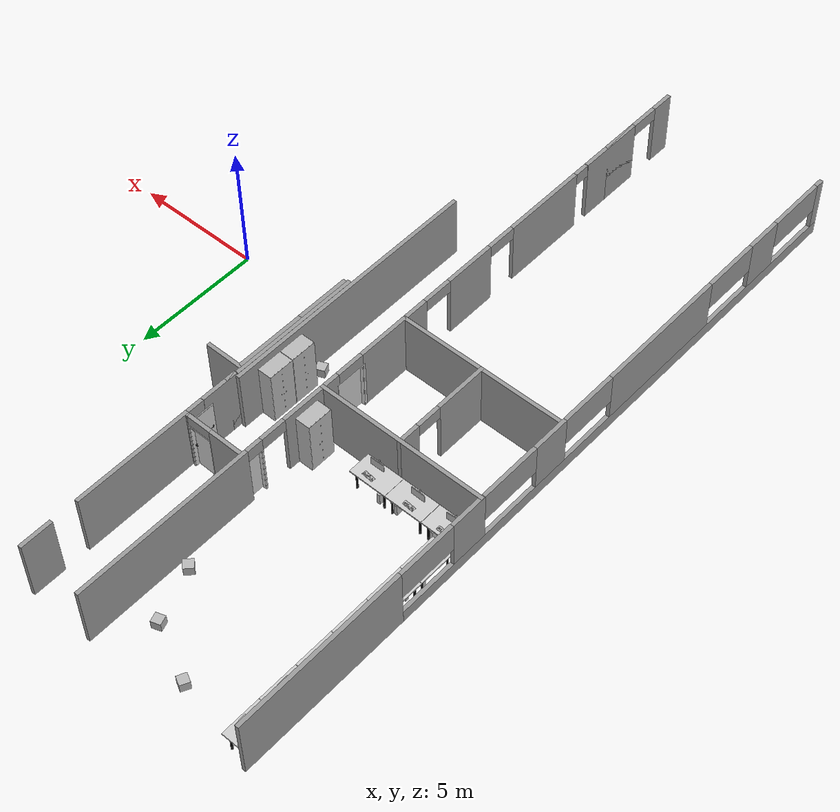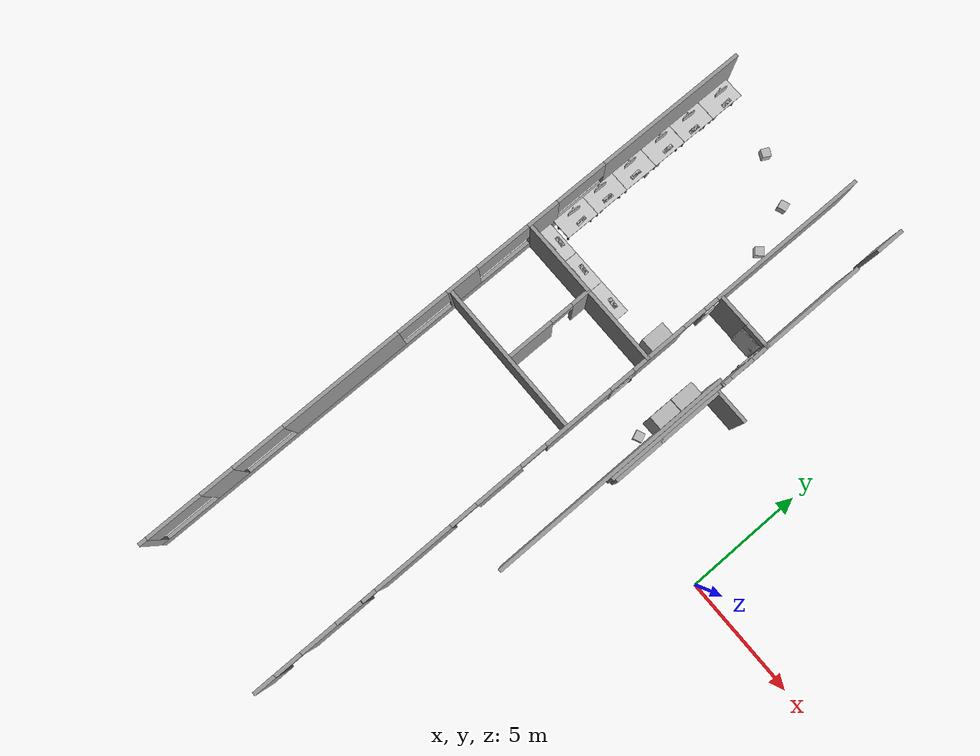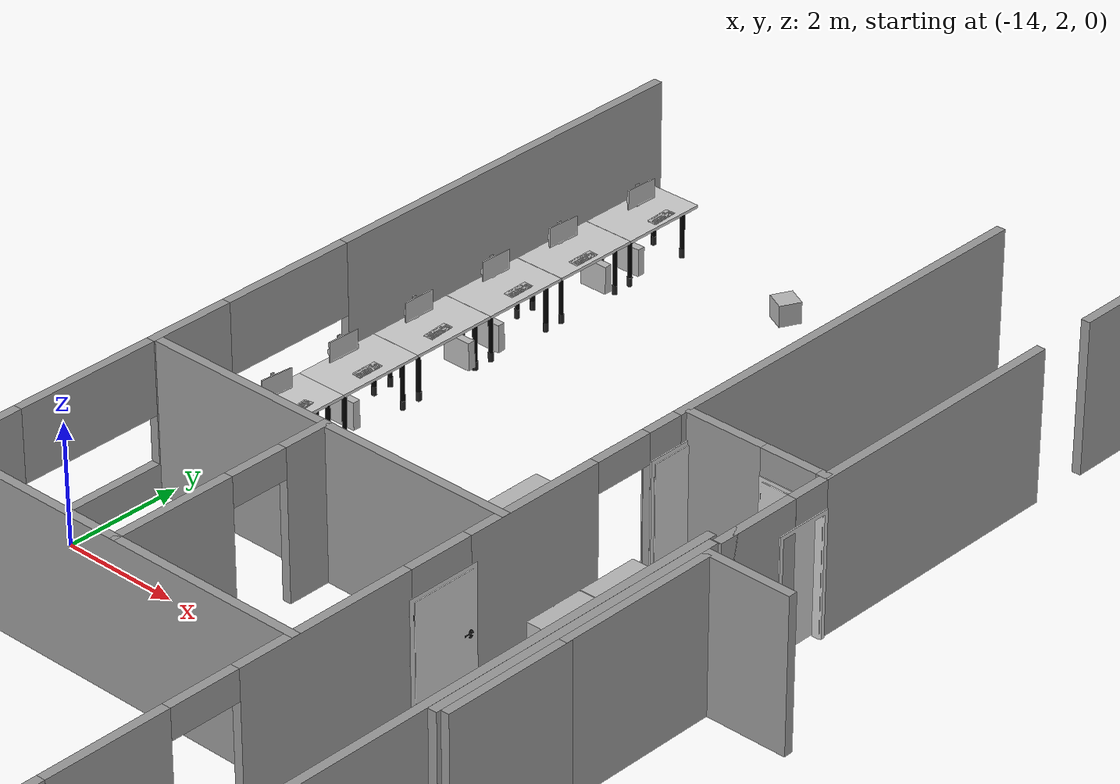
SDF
<sdf version="1.6">
 <world name="default">
  <model name="basement">
   <link name="Wall_1">
    <pose>-14.1254 0.001772 0 0 0 -1.5708</pose>
    <visual name="Wall_1_Visual_0">
     <pose>-10.8889 0 1.25 0 -0 0</pose>
     <geometry><box><size>6.72223 0.15 2.5</size></box></geometry>
     <material>
      <script><uri>file://media/materials/scripts/gazebo.material</uri><name>Gazebo/Grey</name></script>
      <ambient>1 1 1 1</ambient>
     </material>
    </visual>
    <collision name="Wall_1_Collision_0">
     <geometry><box><size>6.72223 0.15 2.5</size></box></geometry>
     <pose>-10.8889 0 1.25 0 -0 0</pose>
    </collision>
    <visual name="Wall_1_Visual_1">
     <pose>3.36112 0 0.25 0 -0 0</pose>
     <geometry><box><size>21.7778 0.15 0.5</size></box></geometry>
     <material>
      <script><uri>file://media/materials/scripts/gazebo.material</uri><name>Gazebo/Grey</name></script>
      <ambient>1 1 1 1</ambient>
     </material>
    </visual>
    <collision name="Wall_1_Collision_1">
     <geometry><box><size>21.7778 0.15 0.5</size></box></geometry>
     <pose>3.36112 0 0.25 0 -0 0</pose>
    </collision>
    <visual name="Wall_1_Visual_2">
     <pose>-4.48488 0 1.5 0 -0 0</pose>
     <geometry><box><size>1.45334 0.15 2</size></box></geometry>
     <material>
      <script><uri>file://media/materials/scripts/gazebo.material</uri><name>Gazebo/Grey</name></script>
      <ambient>1 1 1 1</ambient>
     </material>
    </visual>
    <collision name="Wall_1_Collision_2">
     <geometry><box><size>1.45334 0.15 2</size></box></geometry>
     <pose>-4.48488 0 1.5 0 -0 0</pose>
    </collision>
    <visual name="Wall_1_Visual_3">
     <pose>-0.57841 0 1.5 0 -0 0</pose>
     <geometry><box><size>1.45641 0.15 2</size></box></geometry>
     <material>
      <script><uri>file://media/materials/scripts/gazebo.material</uri><name>Gazebo/Grey</name></script>
      <ambient>1 1 1 1</ambient>
     </material>
    </visual>
    <collision name="Wall_1_Collision_3">
     <geometry><box><size>1.45641 0.15 2</size></box></geometry>
     <pose>-0.57841 0 1.5 0 -0 0</pose>
    </collision>
    <visual name="Wall_1_Visual_4">
     <pose>5.12077 0 1.5 0 -0 0</pose>
     <geometry><box><size>5.31789 0.15 2</size></box></geometry>
     <material>
      <script><uri>file://media/materials/scripts/gazebo.material</uri><name>Gazebo/Grey</name></script>
      <ambient>1 1 1 1</ambient>
     </material>
    </visual>
    <collision name="Wall_1_Collision_4">
     <geometry><box><size>5.31789 0.15 2</size></box></geometry>
     <pose>5.12077 0 1.5 0 -0 0</pose>
    </collision>
    <visual name="Wall_1_Visual_5">
     <pose>10.7967 0 1.5 0 -0 0</pose>
     <geometry><box><size>1.45641 0.15 2</size></box></geometry>
     <material>
      <script><uri>file://media/materials/scripts/gazebo.material</uri><name>Gazebo/Grey</name></script>
      <ambient>1 1 1 1</ambient>
     </material>
    </visual>
    <collision name="Wall_1_Collision_5">
     <geometry><box><size>1.45641 0.15 2</size></box></geometry>
     <pose>10.7967 0 1.5 0 -0 0</pose>
    </collision>
    <visual name="Wall_1_Visual_6">
     <pose>14.0784 0 1.5 0 -0 0</pose>
     <geometry><box><size>0.343295 0.15 2</size></box></geometry>
     <material>
      <script><uri>file://media/materials/scripts/gazebo.material</uri><name>Gazebo/Grey</name></script>
      <ambient>1 1 1 1</ambient>
     </material>
    </visual>
    <collision name="Wall_1_Collision_6">
     <geometry><box><size>0.343295 0.15 2</size></box></geometry>
     <pose>14.0784 0 1.5 0 -0 0</pose>
    </collision>
    <visual name="Wall_1_Visual_7">
     <pose>-6.36966 0 1.9 0 -0 0</pose>
     <geometry><box><size>2.31621 0.15 1.2</size></box></geometry>
     <material>
      <script><uri>file://media/materials/scripts/gazebo.material</uri><name>Gazebo/Grey</name></script>
      <ambient>1 1 1 1</ambient>
     </material>
    </visual>
    <collision name="Wall_1_Collision_7">
     <geometry><box><size>2.31621 0.15 1.2</size></box></geometry>
     <pose>-6.36966 0 1.9 0 -0 0</pose>
    </collision>
    <visual name="Wall_1_Visual_8">
     <pose>-2.53241 0 1.9 0 -0 0</pose>
     <geometry><box><size>2.4516 0.15 1.2</size></box></geometry>
     <material>
      <script><uri>file://media/materials/scripts/gazebo.material</uri><name>Gazebo/Grey</name></script>
      <ambient>1 1 1 1</ambient>
     </material>
    </visual>
    <collision name="Wall_1_Collision_8">
     <geometry><box><size>2.4516 0.15 1.2</size></box></geometry>
     <pose>-2.53241 0 1.9 0 -0 0</pose>
    </collision>
    <visual name="Wall_1_Visual_9">
     <pose>1.30581 0 1.9 0 -0 0</pose>
     <geometry><box><size>2.31203 0.15 1.2</size></box></geometry>
     <material>
      <script><uri>file://media/materials/scripts/gazebo.material</uri><name>Gazebo/Grey</name></script>
      <ambient>1 1 1 1</ambient>
     </material>
    </visual>
    <collision name="Wall_1_Collision_9">
     <geometry><box><size>2.31203 0.15 1.2</size></box></geometry>
     <pose>1.30581 0 1.9 0 -0 0</pose>
    </collision>
    <visual name="Wall_1_Visual_10">
     <pose>8.9241 0 1.9 0 -0 0</pose>
     <geometry><box><size>2.28877 0.15 1.2</size></box></geometry>
     <material>
      <script><uri>file://media/materials/scripts/gazebo.material</uri><name>Gazebo/Grey</name></script>
      <ambient>1 1 1 1</ambient>
     </material>
    </visual>
    <collision name="Wall_1_Collision_10">
     <geometry><box><size>2.28877 0.15 1.2</size></box></geometry>
     <pose>8.9241 0 1.9 0 -0 0</pose>
    </collision>
    <visual name="Wall_1_Visual_11">
     <pose>12.7158 0 1.9 0 -0 0</pose>
     <geometry><box><size>2.38181 0.15 1.2</size></box></geometry>
     <material>
      <script><uri>file://media/materials/scripts/gazebo.material</uri><name>Gazebo/Grey</name></script>
      <ambient>1 1 1 1</ambient>
     </material>
    </visual>
    <collision name="Wall_1_Collision_11">
     <geometry><box><size>2.38181 0.15 1.2</size></box></geometry>
     <pose>12.7158 0 1.9 0 -0 0</pose>
    </collision>
   </link>
   <link name="Wall_146">
    <collision name="Wall_146_Collision">
     <geometry><box><size>5.25 0.15 2.5</size></box></geometry>
     <pose>0 0 1.25 0 -0 0</pose>
    </collision>
    <visual name="Wall_146_Visual">
     <pose>0 0 1.25 0 -0 0</pose>
     <geometry><box><size>5.25 0.15 2.5</size></box></geometry>
     <material>
      <script><uri>file://media/materials/scripts/gazebo.material</uri><name>Gazebo/Grey</name></script>
      <ambient>1 1 1 1</ambient>
     </material>
    </visual>
    <pose>-5.04892 2.61682 0 0 -0 1.5708</pose>
   </link>
   <link name="Wall_17">
    <collision name="Wall_17_Collision">
     <geometry><box><size>6.75 0.15 2.5</size></box></geometry>
     <pose>0 0 1.25 0 -0 0</pose>
    </collision>
    <visual name="Wall_17_Visual">
     <pose>0 0 1.25 0 -0 0</pose>
     <geometry><box><size>6.75 0.15 2.5</size></box></geometry>
     <material>
      <script><uri>file://media/materials/scripts/gazebo.material</uri><name>Gazebo/Grey</name></script>
      <ambient>1 1 1 1</ambient>
     </material>
    </visual>
    <pose>-10.8156 0.004484 0 0 -0 0</pose>
   </link>
   <link name="Wall_19">
    <collision name="Wall_19_Collision">
     <geometry><box><size>6.75 0.15 2.5</size></box></geometry>
     <pose>0 0 1.25 0 -0 0</pose>
    </collision>
    <visual name="Wall_19_Visual">
     <pose>0 0 1.25 0 -0 0</pose>
     <geometry><box><size>6.75 0.15 2.5</size></box></geometry>
     <material>
      <script><uri>file://media/materials/scripts/gazebo.material</uri><name>Gazebo/Grey</name></script>
      <ambient>1 1 1 1</ambient>
     </material>
    </visual>
    <pose>-10.8156 3.85656 0 0 -0 0</pose>
   </link>
   <link name="Wall_21">
    <pose>-10.8088 1.93156 0 0 0 -1.5708</pose>
    <visual name="Wall_21_Visual_0">
     <pose>-1.56265 0 1.25 0 -0 0</pose>
     <geometry><box><size>0.874704 0.15 2.5</size></box></geometry>
     <material>
      <script><uri>file://media/materials/scripts/gazebo.material</uri><name>Gazebo/Grey</name></script>
      <ambient>1 1 1 1</ambient>
     </material>
    </visual>
    <collision name="Wall_21_Collision_0">
     <geometry><box><size>0.874704 0.15 2.5</size></box></geometry>
     <pose>-1.56265 0 1.25 0 -0 0</pose>
    </collision>
    <visual name="Wall_21_Visual_1">
     <pose>0.933876 0 1.25 0 -0 0</pose>
     <geometry><box><size>2.13225 0.15 2.5</size></box></geometry>
     <material>
      <script><uri>file://media/materials/scripts/gazebo.material</uri><name>Gazebo/Grey</name></script>
      <ambient>1 1 1 1</ambient>
     </material>
    </visual>
    <collision name="Wall_21_Collision_1">
     <geometry><box><size>2.13225 0.15 2.5</size></box></geometry>
     <pose>0.933876 0 1.25 0 -0 0</pose>
    </collision>
    <visual name="Wall_21_Visual_2">
     <pose>-0.628773 0 2.25 0 -0 0</pose>
     <geometry><box><size>0.993048 0.15 0.5</size></box></geometry>
     <material>
      <script><uri>file://media/materials/scripts/gazebo.material</uri><name>Gazebo/Grey</name></script>
      <ambient>1 1 1 1</ambient>
     </material>
    </visual>
    <collision name="Wall_21_Collision_2">
     <geometry><box><size>0.993048 0.15 0.5</size></box></geometry>
     <pose>-0.628773 0 2.25 0 -0 0</pose>
    </collision>
   </link>
   <link name="Wall_23">
    <pose>-5.00676 8.62969 0 0 0 -1.5708</pose>
    <visual name="Wall_23_Visual_0">
     <pose>-1.06412 0 1.25 0 -0 0</pose>
     <geometry><box><size>4.62176 0.15 2.5</size></box></geometry>
     <material>
      <script><uri>file://media/materials/scripts/gazebo.material</uri><name>Gazebo/Grey</name></script>
      <ambient>1 1 1 1</ambient>
     </material>
    </visual>
    <collision name="Wall_23_Collision_0">
     <geometry><box><size>4.62176 0.15 2.5</size></box></geometry>
     <pose>-1.06412 0 1.25 0 -0 0</pose>
    </collision>
    <visual name="Wall_23_Visual_1">
     <pose>2.63296 0 1.25 0 -0 0</pose>
     <geometry><box><size>1.48408 0.15 2.5</size></box></geometry>
     <material>
      <script><uri>file://media/materials/scripts/gazebo.material</uri><name>Gazebo/Grey</name></script>
      <ambient>1 1 1 1</ambient>
     </material>
    </visual>
    <collision name="Wall_23_Collision_1">
     <geometry><box><size>1.48408 0.15 2.5</size></box></geometry>
     <pose>2.63296 0 1.25 0 -0 0</pose>
    </collision>
    <visual name="Wall_23_Visual_2">
     <pose>3.15649 0 1.25 0 -0 0</pose>
     <geometry><box><size>0.437027 0.15 2.5</size></box></geometry>
     <material>
      <script><uri>file://media/materials/scripts/gazebo.material</uri><name>Gazebo/Grey</name></script>
      <ambient>1 1 1 1</ambient>
     </material>
    </visual>
    <collision name="Wall_23_Collision_2">
     <geometry><box><size>0.437027 0.15 2.5</size></box></geometry>
     <pose>3.15649 0 1.25 0 -0 0</pose>
    </collision>
    <visual name="Wall_23_Visual_3">
     <pose>1.56762 0 2.25 0 -0 0</pose>
     <geometry><box><size>0.641714 0.15 0.5</size></box></geometry>
     <material>
      <script><uri>file://media/materials/scripts/gazebo.material</uri><name>Gazebo/Grey</name></script>
      <ambient>1 1 1 1</ambient>
     </material>
    </visual>
    <collision name="Wall_23_Collision_3">
     <geometry><box><size>0.641714 0.15 0.5</size></box></geometry>
     <pose>1.56762 0 2.25 0 -0 0</pose>
    </collision>
   </link>
   <link name="Wall_25">
    <pose>-6.22027 7.45768 0 0 -0 0</pose>
    <visual name="Wall_25_Visual_0">
     <pose>-0.572125 0 1.25 0 -0 0</pose>
     <geometry><box><size>1.35575 0.15 2.5</size></box></geometry>
     <material>
      <script><uri>file://media/materials/scripts/gazebo.material</uri><name>Gazebo/Grey</name></script>
      <ambient>1 1 1 1</ambient>
     </material>
    </visual>
    <collision name="Wall_25_Collision_0">
     <geometry><box><size>1.35575 0.15 2.5</size></box></geometry>
     <pose>-0.572125 0 1.25 0 -0 0</pose>
    </collision>
    <visual name="Wall_25_Visual_1">
     <pose>1.16237 0 1.25 0 -0 0</pose>
     <geometry><box><size>0.17525 0.15 2.5</size></box></geometry>
     <material>
      <script><uri>file://media/materials/scripts/gazebo.material</uri><name>Gazebo/Grey</name></script>
      <ambient>1 1 1 1</ambient>
     </material>
    </visual>
    <collision name="Wall_25_Collision_1">
     <geometry><box><size>0.17525 0.15 2.5</size></box></geometry>
     <pose>1.16237 0 1.25 0 -0 0</pose>
    </collision>
    <visual name="Wall_25_Visual_2">
     <pose>0.59025 0 2.25 0 -0 0</pose>
     <geometry><box><size>0.969 0.15 0.5</size></box></geometry>
     <material>
      <script><uri>file://media/materials/scripts/gazebo.material</uri><name>Gazebo/Grey</name></script>
      <ambient>1 1 1 1</ambient>
     </material>
    </visual>
    <collision name="Wall_25_Collision_2">
     <geometry><box><size>0.969 0.15 0.5</size></box></geometry>
     <pose>0.59025 0 2.25 0 -0 0</pose>
    </collision>
   </link>
   <link name="Wall_27">
    <collision name="Wall_27_Collision">
     <geometry><box><size>1.25 0.15 2.5</size></box></geometry>
     <pose>0 0 1.25 0 -0 0</pose>
    </collision>
    <visual name="Wall_27_Visual">
     <pose>0 0 1.25 0 -0 0</pose>
     <geometry><box><size>1.25 0.15 2.5</size></box></geometry>
     <material>
      <script><uri>file://media/materials/scripts/gazebo.material</uri><name>Gazebo/Grey</name></script>
      <ambient>1 1 1 1</ambient>
     </material>
    </visual>
    <pose>-4.99983 13.6109 0 0 -0 1.5708</pose>
   </link>
   <link name="Wall_29">
    <collision name="Wall_29_Collision">
     <geometry><box><size>10.5 0.15 2.5</size></box></geometry>
     <pose>0 0 1.25 0 -0 0</pose>
    </collision>
    <visual name="Wall_29_Visual">
     <pose>0 0 1.25 0 -0 0</pose>
     <geometry><box><size>10.5 0.15 2.5</size></box></geometry>
     <material>
      <script><uri>file://media/materials/scripts/gazebo.material</uri><name>Gazebo/Grey</name></script>
      <ambient>1 1 1 1</ambient>
     </material>
    </visual>
    <pose>-5.20099 0.119525 0 0 0 -1.5708</pose>
   </link>
   <link name="Wall_47">
    <collision name="Wall_47_Collision">
     <geometry><box><size>2.75 0.15 2.5</size></box></geometry>
     <pose>0 0 1.25 0 -0 0</pose>
    </collision>
    <visual name="Wall_47_Visual">
     <pose>0 0 1.25 0 -0 0</pose>
     <geometry><box><size>2.75 0.15 2.5</size></box></geometry>
     <material>
      <script><uri>file://media/materials/scripts/gazebo.material</uri><name>Gazebo/Grey</name></script>
      <ambient>1 1 1 1</ambient>
     </material>
    </visual>
    <pose>-4.91322 3.5855 0 0 0 -1.5708</pose>
   </link>
   <link name="Wall_57">
    <collision name="Wall_57_Collision">
     <geometry><box><size>1.5 0.15 2.5</size></box></geometry>
     <pose>0 0 1.25 0 -0 0</pose>
    </collision>
    <visual name="Wall_57_Visual">
     <pose>0 0 1.25 0 -0 0</pose>
     <geometry><box><size>1.5 0.15 2.5</size></box></geometry>
     <material>
      <script><uri>file://media/materials/scripts/gazebo.material</uri><name>Gazebo/Grey</name></script>
      <ambient>1 1 1 1</ambient>
     </material>
    </visual>
    <pose>-4.23706 4.99373 0 0 -0 0</pose>
   </link>
   <link name="Wall_61">
    <collision name="Wall_61_Collision">
     <geometry><box><size>2.25 0.15 2.5</size></box></geometry>
     <pose>0 0 1.25 0 -0 0</pose>
    </collision>
    <visual name="Wall_61_Visual">
     <pose>0 0 1.25 0 -0 0</pose>
     <geometry><box><size>2.25 0.15 2.5</size></box></geometry>
     <material>
      <script><uri>file://media/materials/scripts/gazebo.material</uri><name>Gazebo/Grey</name></script>
      <ambient>1 1 1 1</ambient>
     </material>
    </visual>
    <pose>-4.90974 1.19358 0 0 -0 1.5708</pose>
   </link>
   <link name="Wall_9">
    <pose>-7.5098 -0.001772 0 0 0 -1.5708</pose>
    <visual name="Wall_9_Visual_0">
     <pose>-10.7651 0 1.25 0 -0 0</pose>
     <geometry><box><size>6.96988 0.15 2.5</size></box></geometry>
     <material>
      <script><uri>file://media/materials/scripts/gazebo.material</uri><name>Gazebo/Grey</name></script>
      <ambient>1 1 1 1</ambient>
     </material>
    </visual>
    <collision name="Wall_9_Collision_0">
     <geometry><box><size>6.96988 0.15 2.5</size></box></geometry>
     <pose>-10.7651 0 1.25 0 -0 0</pose>
    </collision>
    <visual name="Wall_9_Visual_1">
     <pose>-6.6572 0 1.25 0 -0 0</pose>
     <geometry><box><size>0.001376 0.15 2.5</size></box></geometry>
     <material>
      <script><uri>file://media/materials/scripts/gazebo.material</uri><name>Gazebo/Grey</name></script>
      <ambient>1 1 1 1</ambient>
     </material>
    </visual>
    <collision name="Wall_9_Collision_1">
     <geometry><box><size>0.001376 0.15 2.5</size></box></geometry>
     <pose>-6.6572 0 1.25 0 -0 0</pose>
    </collision>
    <visual name="Wall_9_Visual_2">
     <pose>-4.41142 0 1.25 0 -0 0</pose>
     <geometry><box><size>2.44394 0.15 2.5</size></box></geometry>
     <material>
      <script><uri>file://media/materials/scripts/gazebo.material</uri><name>Gazebo/Grey</name></script>
      <ambient>1 1 1 1</ambient>
     </material>
    </visual>
    <collision name="Wall_9_Collision_2">
     <geometry><box><size>2.44394 0.15 2.5</size></box></geometry>
     <pose>-4.41142 0 1.25 0 -0 0</pose>
    </collision>
    <visual name="Wall_9_Visual_3">
     <pose>-0.541192 0 1.25 0 -0 0</pose>
     <geometry><box><size>3.0778 0.15 2.5</size></box></geometry>
     <material>
      <script><uri>file://media/materials/scripts/gazebo.material</uri><name>Gazebo/Grey</name></script>
      <ambient>1 1 1 1</ambient>
     </material>
    </visual>
    <collision name="Wall_9_Collision_3">
     <geometry><box><size>3.0778 0.15 2.5</size></box></geometry>
     <pose>-0.541192 0 1.25 0 -0 0</pose>
    </collision>
    <visual name="Wall_9_Visual_4">
     <pose>3.21561 0 1.25 0 -0 0</pose>
     <geometry><box><size>2.07753 0.15 2.5</size></box></geometry>
     <material>
      <script><uri>file://media/materials/scripts/gazebo.material</uri><name>Gazebo/Grey</name></script>
      <ambient>1 1 1 1</ambient>
     </material>
    </visual>
    <collision name="Wall_9_Collision_4">
     <geometry><box><size>2.07753 0.15 2.5</size></box></geometry>
     <pose>3.21561 0 1.25 0 -0 0</pose>
    </collision>
    <visual name="Wall_9_Visual_5">
     <pose>7.14533 0 1.25 0 -0 0</pose>
     <geometry><box><size>3.42362 0.15 2.5</size></box></geometry>
     <material>
      <script><uri>file://media/materials/scripts/gazebo.material</uri><name>Gazebo/Grey</name></script>
      <ambient>1 1 1 1</ambient>
     </material>
    </visual>
    <collision name="Wall_9_Collision_5">
     <geometry><box><size>3.42362 0.15 2.5</size></box></geometry>
     <pose>7.14533 0 1.25 0 -0 0</pose>
    </collision>
    <visual name="Wall_9_Visual_6">
     <pose>10.8295 0 1.25 0 -0 0</pose>
     <geometry><box><size>2.69123 0.15 2.5</size></box></geometry>
     <material>
      <script><uri>file://media/materials/scripts/gazebo.material</uri><name>Gazebo/Grey</name></script>
      <ambient>1 1 1 1</ambient>
     </material>
    </visual>
    <collision name="Wall_9_Collision_6">
     <geometry><box><size>2.69123 0.15 2.5</size></box></geometry>
     <pose>10.8295 0 1.25 0 -0 0</pose>
    </collision>
    <visual name="Wall_9_Visual_7">
     <pose>11.398 0 1.25 0 -0 0</pose>
     <geometry><box><size>1.55414 0.15 2.5</size></box></geometry>
     <material>
      <script><uri>file://media/materials/scripts/gazebo.material</uri><name>Gazebo/Grey</name></script>
      <ambient>1 1 1 1</ambient>
     </material>
    </visual>
    <collision name="Wall_9_Collision_7">
     <geometry><box><size>1.55414 0.15 2.5</size></box></geometry>
     <pose>11.398 0 1.25 0 -0 0</pose>
    </collision>
    <visual name="Wall_9_Visual_8">
     <pose>13.7905 0 1.25 0 -0 0</pose>
     <geometry><box><size>0.919043 0.15 2.5</size></box></geometry>
     <material>
      <script><uri>file://media/materials/scripts/gazebo.material</uri><name>Gazebo/Grey</name></script>
      <ambient>1 1 1 1</ambient>
     </material>
    </visual>
    <collision name="Wall_9_Collision_8">
     <geometry><box><size>0.919043 0.15 2.5</size></box></geometry>
     <pose>13.7905 0 1.25 0 -0 0</pose>
    </collision>
    <visual name="Wall_9_Visual_9">
     <pose>-6.969 0 2.25 0 -0 0</pose>
     <geometry><box><size>0.622229 0.15 0.5</size></box></geometry>
     <material>
      <script><uri>file://media/materials/scripts/gazebo.material</uri><name>Gazebo/Grey</name></script>
      <ambient>1 1 1 1</ambient>
     </material>
    </visual>
    <collision name="Wall_9_Collision_9">
     <geometry><box><size>0.622229 0.15 0.5</size></box></geometry>
     <pose>-6.969 0 2.25 0 -0 0</pose>
    </collision>
    <visual name="Wall_9_Visual_10">
     <pose>-6.14495 0 2.25 0 -0 0</pose>
     <geometry><box><size>1.02313 0.15 0.5</size></box></geometry>
     <material>
      <script><uri>file://media/materials/scripts/gazebo.material</uri><name>Gazebo/Grey</name></script>
      <ambient>1 1 1 1</ambient>
     </material>
    </visual>
    <collision name="Wall_9_Collision_10">
     <geometry><box><size>1.02313 0.15 0.5</size></box></geometry>
     <pose>-6.14495 0 2.25 0 -0 0</pose>
    </collision>
    <visual name="Wall_9_Visual_11">
     <pose>-2.63477 0 2.25 0 -0 0</pose>
     <geometry><box><size>1.10936 0.15 0.5</size></box></geometry>
     <material>
      <script><uri>file://media/materials/scripts/gazebo.material</uri><name>Gazebo/Grey</name></script>
      <ambient>1 1 1 1</ambient>
     </material>
    </visual>
    <collision name="Wall_9_Collision_11">
     <geometry><box><size>1.10936 0.15 0.5</size></box></geometry>
     <pose>-2.63477 0 2.25 0 -0 0</pose>
    </collision>
    <visual name="Wall_9_Visual_12">
     <pose>1.58728 0 2.25 0 -0 0</pose>
     <geometry><box><size>1.17914 0.15 0.5</size></box></geometry>
     <material>
      <script><uri>file://media/materials/scripts/gazebo.material</uri><name>Gazebo/Grey</name></script>
      <ambient>1 1 1 1</ambient>
     </material>
    </visual>
    <collision name="Wall_9_Collision_12">
     <geometry><box><size>1.17914 0.15 0.5</size></box></geometry>
     <pose>1.58728 0 2.25 0 -0 0</pose>
    </collision>
    <visual name="Wall_9_Visual_13">
     <pose>4.84395 0 2.25 0 -0 0</pose>
     <geometry><box><size>1.17914 0.15 0.5</size></box></geometry>
     <material>
      <script><uri>file://media/materials/scripts/gazebo.material</uri><name>Gazebo/Grey</name></script>
      <ambient>1 1 1 1</ambient>
     </material>
    </visual>
    <collision name="Wall_9_Collision_13">
     <geometry><box><size>1.17914 0.15 0.5</size></box></geometry>
     <pose>4.84395 0 2.25 0 -0 0</pose>
    </collision>
    <visual name="Wall_9_Visual_14">
     <pose>9.1611 0 2.25 0 -0 0</pose>
     <geometry><box><size>0.607918 0.15 0.5</size></box></geometry>
     <material>
      <script><uri>file://media/materials/scripts/gazebo.material</uri><name>Gazebo/Grey</name></script>
      <ambient>1 1 1 1</ambient>
     </material>
    </visual>
    <collision name="Wall_9_Collision_14">
     <geometry><box><size>0.607918 0.15 0.5</size></box></geometry>
     <pose>9.1611 0 2.25 0 -0 0</pose>
    </collision>
    <visual name="Wall_9_Visual_15">
     <pose>12.753 0 2.25 0 -0 0</pose>
     <geometry><box><size>1.15588 0.15 0.5</size></box></geometry>
     <material>
      <script><uri>file://media/materials/scripts/gazebo.material</uri><name>Gazebo/Grey</name></script>
      <ambient>1 1 1 1</ambient>
     </material>
    </visual>
    <collision name="Wall_9_Collision_15">
     <geometry><box><size>1.15588 0.15 0.5</size></box></geometry>
     <pose>12.753 0 2.25 0 -0 0</pose>
    </collision>
    <visual name="Wall_9_Visual_16">
     <pose>12.753 0 2.25 0 -0 0</pose>
     <geometry><box><size>1.15588 0.15 0.5</size></box></geometry>
     <material>
      <script><uri>file://media/materials/scripts/gazebo.material</uri><name>Gazebo/Grey</name></script>
      <ambient>1 1 1 1</ambient>
     </material>
    </visual>
    <collision name="Wall_9_Collision_16">
     <geometry><box><size>1.15588 0.15 0.5</size></box></geometry>
     <pose>12.753 0 2.25 0 -0 0</pose>
    </collision>
   </link>
   <static>1</static>
  </model>
  <model name="wardrobe">
   <link name="link">
    <visual name="visual">
     <geometry><mesh><uri>model://cabinet/meshes/cabinet.dae</uri><scale>1 1 1</scale></mesh></geometry>
    </visual>
    <collision name="collision">
     <geometry><mesh><uri>model://cabinet/meshes/cabinet.dae</uri><scale>1 1 1</scale></mesh></geometry>
    </collision>
   </link>
   <static>1</static>
   <pose>-7.88879 4.71222 0 0 0 -1.5707</pose>
  </model>
  <model name="wardrobe_0">
   <link name="link">
    <visual name="visual">
     <geometry><mesh><uri>model://cabinet/meshes/cabinet.dae</uri><scale>1 1 1</scale></mesh></geometry>
    </visual>
    <collision name="collision">
     <geometry><mesh><uri>model://cabinet/meshes/cabinet.dae</uri><scale>1 1 1</scale></mesh></geometry>
    </collision>
   </link>
   <static>1</static>
   <pose>-5.55 4.05207 0 0 0 -1.5707</pose>
  </model>
  <model name="wardrobe_1">
   <link name="link">
    <visual name="visual">
     <geometry><mesh><uri>model://cabinet/meshes/cabinet.dae</uri><scale>1 1 1</scale></mesh></geometry>
    </visual>
    <collision name="collision">
     <geometry><mesh><uri>model://cabinet/meshes/cabinet.dae</uri><scale>1 1 1</scale></mesh></geometry>
    </collision>
   </link>
   <static>1</static>
   <pose>-5.55012 3.03744 0 0 0 -1.5707</pose>
  </model>
  <model name="office_table">
   <link name="link">
    <visual name="visual">
     <geometry><mesh><uri>model://office_table/meshes/office_table.dae</uri><scale>1 1 1</scale></mesh></geometry>
    </visual>
    <collision name="collision">
     <geometry><mesh><uri>model://office_table/meshes/office_table.dae</uri><scale>1 1 1</scale></mesh></geometry>
    </collision>
   </link>
   <static>1</static>
   <pose>-13.5998 10.3558 0 0 -0 1.5707</pose>
  </model>
  <model name="office_table_0">
   <link name="link">
    <visual name="visual">
     <geometry><mesh><uri>model://office_table/meshes/office_table.dae</uri><scale>1 1 1</scale></mesh></geometry>
    </visual>
    <collision name="collision">
     <geometry><mesh><uri>model://office_table/meshes/office_table.dae</uri><scale>1 1 1</scale></mesh></geometry>
    </collision>
   </link>
   <static>1</static>
   <pose>-13.6 5.80688 0 0 -0 1.5707</pose>
  </model>
  <model name="office_table_1">
   <link name="link">
    <visual name="visual">
     <geometry><mesh><uri>model://office_table/meshes/office_table.dae</uri><scale>1 1 1</scale></mesh></geometry>
    </visual>
    <collision name="collision">
     <geometry><mesh><uri>model://office_table/meshes/office_table.dae</uri><scale>1 1 1</scale></mesh></geometry>
    </collision>
   </link>
   <static>1</static>
   <pose>-13.6 7.32319 0 0 -0 1.5707</pose>
  </model>
  <model name="office_table_2">
   <link name="link">
    <visual name="visual">
     <geometry><mesh><uri>model://office_table/meshes/office_table.dae</uri><scale>1 1 1</scale></mesh></geometry>
    </visual>
    <collision name="collision">
     <geometry><mesh><uri>model://office_table/meshes/office_table.dae</uri><scale>1 1 1</scale></mesh></geometry>
    </collision>
   </link>
   <static>1</static>
   <pose>-10.1891 4.4 0 0 -0 0</pose>
  </model>
  <model name="office_table_3">
   <link name="link">
    <visual name="visual">
     <geometry><mesh><uri>model://office_table/meshes/office_table.dae</uri><scale>1 1 1</scale></mesh></geometry>
    </visual>
    <collision name="collision">
     <geometry><mesh><uri>model://office_table/meshes/office_table.dae</uri><scale>1 1 1</scale></mesh></geometry>
    </collision>
   </link>
   <static>1</static>
   <pose>-13.5997 11.8755 0 0 -0 1.5707</pose>
  </model>
  <model name="office_table_4">
   <link name="link">
    <visual name="visual">
     <geometry><mesh><uri>model://office_table/meshes/office_table.dae</uri><scale>1 1 1</scale></mesh></geometry>
    </visual>
    <collision name="collision">
     <geometry><mesh><uri>model://office_table/meshes/office_table.dae</uri><scale>1 1 1</scale></mesh></geometry>
    </collision>
   </link>
   <static>1</static>
   <pose>-13.5998 8.83935 0 0 -0 1.5707</pose>
  </model>
  <model name="office_table_5">
   <link name="link">
    <visual name="visual">
     <geometry><mesh><uri>model://office_table/meshes/office_table.dae</uri><scale>1 1 1</scale></mesh></geometry>
    </visual>
    <collision name="collision">
     <geometry><mesh><uri>model://office_table/meshes/office_table.dae</uri><scale>1 1 1</scale></mesh></geometry>
    </collision>
   </link>
   <static>1</static>
   <pose>-11.7071 4.4 0 0 -0 0</pose>
  </model>
  <model name="office_table_6">
   <link name="link">
    <visual name="visual">
     <geometry><mesh><uri>model://office_table/meshes/office_table.dae</uri><scale>1 1 1</scale></mesh></geometry>
    </visual>
    <collision name="collision">
     <geometry><mesh><uri>model://office_table/meshes/office_table.dae</uri><scale>1 1 1</scale></mesh></geometry>
    </collision>
   </link>
   <static>1</static>
   <pose>-13.2354 4.4 0 0 -0 0</pose>
  </model>
  <model name="office_table_7">
   <link name="link">
    <visual name="visual">
     <geometry><mesh><uri>model://office_table/meshes/office_table.dae</uri><scale>1 1 1</scale></mesh></geometry>
    </visual>
    <collision name="collision">
     <geometry><mesh><uri>model://office_table/meshes/office_table.dae</uri><scale>1 1 1</scale></mesh></geometry>
    </collision>
   </link>
   <static>1</static>
   <pose>-13.5998 13.393 0 0 -0 1.5707</pose>
  </model>
  <model name="pc">
   <link name="link">
    <visual name="visual">
     <geometry><mesh><uri>model://pc/meshes/pc.dae</uri><scale>1 1 1</scale></mesh></geometry>
    </visual>
    <collision name="collision">
     <geometry><mesh><uri>model://pc/meshes/pc.dae</uri><scale>1 1 1</scale></mesh></geometry>
    </collision>
   </link>
   <static>1</static>
   <pose>-11.3419 4.48606 0 0 -0 3.141</pose>
  </model>
  <model name="pc_0">
   <link name="link">
    <visual name="visual">
     <geometry><mesh><uri>model://pc/meshes/pc.dae</uri><scale>1 1 1</scale></mesh></geometry>
    </visual>
    <collision name="collision">
     <geometry><mesh><uri>model://pc/meshes/pc.dae</uri><scale>1 1 1</scale></mesh></geometry>
    </collision>
   </link>
   <static>1</static>
   <pose>-12.8626 4.49995 0 0 -0 3.141</pose>
  </model>
  <model name="pc_1">
   <link name="link">
    <visual name="visual">
     <geometry><mesh><uri>model://pc/meshes/pc.dae</uri><scale>1 1 1</scale></mesh></geometry>
    </visual>
    <collision name="collision">
     <geometry><mesh><uri>model://pc/meshes/pc.dae</uri><scale>1 1 1</scale></mesh></geometry>
    </collision>
   </link>
   <static>1</static>
   <pose>-10.6413 4.52563 0 0 -0 3.141</pose>
  </model>
  <model name="pc_2">
   <link name="link">
    <visual name="visual">
     <geometry><mesh><uri>model://pc/meshes/pc.dae</uri><scale>1 1 1</scale></mesh></geometry>
    </visual>
    <collision name="collision">
     <geometry><mesh><uri>model://pc/meshes/pc.dae</uri><scale>1 1 1</scale></mesh></geometry>
    </collision>
   </link>
   <static>1</static>
   <pose>-13.5783 6.16697 0 0 -0 1.5707</pose>
  </model>
  <model name="pc_3">
   <link name="link">
    <visual name="visual">
     <geometry><mesh><uri>model://pc/meshes/pc.dae</uri><scale>1 1 1</scale></mesh></geometry>
    </visual>
    <collision name="collision">
     <geometry><mesh><uri>model://pc/meshes/pc.dae</uri><scale>1 1 1</scale></mesh></geometry>
    </collision>
   </link>
   <static>1</static>
   <pose>-13.5256 6.88608 0 0 -0 1.5707</pose>
  </model>
  <model name="pc_4">
   <link name="link">
    <visual name="visual">
     <geometry><mesh><uri>model://pc/meshes/pc.dae</uri><scale>1 1 1</scale></mesh></geometry>
    </visual>
    <collision name="collision">
     <geometry><mesh><uri>model://pc/meshes/pc.dae</uri><scale>1 1 1</scale></mesh></geometry>
    </collision>
   </link>
   <static>1</static>
   <pose>-13.5073 9.87994 0 0 -0 1.5707</pose>
  </model>
  <model name="pc_5">
   <link name="link">
    <visual name="visual">
     <geometry><mesh><uri>model://pc/meshes/pc.dae</uri><scale>1 1 1</scale></mesh></geometry>
    </visual>
    <collision name="collision">
     <geometry><mesh><uri>model://pc/meshes/pc.dae</uri><scale>1 1 1</scale></mesh></geometry>
    </collision>
   </link>
   <static>1</static>
   <pose>-13.5206 12.2188 0 0 -0 1.5707</pose>
  </model>
  <model name="pc_6">
   <link name="link">
    <visual name="visual">
     <geometry><mesh><uri>model://pc/meshes/pc.dae</uri><scale>1 1 1</scale></mesh></geometry>
    </visual>
    <collision name="collision">
     <geometry><mesh><uri>model://pc/meshes/pc.dae</uri><scale>1 1 1</scale></mesh></geometry>
    </collision>
   </link>
   <static>1</static>
   <pose>-13.5138 12.9492 0 0 -0 1.5707</pose>
  </model>
  <model name="pc_7">
   <link name="link">
    <visual name="visual">
     <geometry><mesh><uri>model://pc/meshes/pc.dae</uri><scale>1 1 1</scale></mesh></geometry>
    </visual>
    <collision name="collision">
     <geometry><mesh><uri>model://pc/meshes/pc.dae</uri><scale>1 1 1</scale></mesh></geometry>
    </collision>
   </link>
   <static>1</static>
   <pose>-13.4711 9.2109 0 0 -0 1.5707</pose>
  </model>
  <model name="monitor">
   <link name="link">
    <visual name="visual">
     <geometry><mesh><uri>model://monitor/meshes/monitor.dae</uri><scale>1 1 1</scale></mesh></geometry>
    </visual>
    <collision name="collision">
     <geometry><mesh><uri>model://monitor/meshes/monitor.dae</uri><scale>1 1 1</scale></mesh></geometry>
    </collision>
   </link>
   <static>1</static>
   <pose>-13.3236 4.21798 1 0 0 -3.07367</pose>
  </model>
  <model name="monitor_0">
   <link name="link">
    <visual name="visual">
     <geometry><mesh><uri>model://monitor/meshes/monitor.dae</uri><scale>1 1 1</scale></mesh></geometry>
    </visual>
    <collision name="collision">
     <geometry><mesh><uri>model://monitor/meshes/monitor.dae</uri><scale>1 1 1</scale></mesh></geometry>
    </collision>
   </link>
   <static>1</static>
   <pose>-11.842 4.2272 1 0 -0 3.12865</pose>
  </model>
  <model name="monitor_1">
   <link name="link">
    <visual name="visual">
     <geometry><mesh><uri>model://monitor/meshes/monitor.dae</uri><scale>1 1 1</scale></mesh></geometry>
    </visual>
    <collision name="collision">
     <geometry><mesh><uri>model://monitor/meshes/monitor.dae</uri><scale>1 1 1</scale></mesh></geometry>
    </collision>
   </link>
   <static>1</static>
   <pose>-10.0972 4.20184 1 0 0 -3.12724</pose>
  </model>
  <model name="monitor_2">
   <link name="link">
    <visual name="visual">
     <geometry><mesh><uri>model://monitor/meshes/monitor.dae</uri><scale>1 1 1</scale></mesh></geometry>
    </visual>
    <collision name="collision">
     <geometry><mesh><uri>model://monitor/meshes/monitor.dae</uri><scale>1 1 1</scale></mesh></geometry>
    </collision>
   </link>
   <static>1</static>
   <pose>-13.798 5.83031 1 0 -0 1.48637</pose>
  </model>
  <model name="monitor_3">
   <link name="link">
    <visual name="visual">
     <geometry><mesh><uri>model://monitor/meshes/monitor.dae</uri><scale>1 1 1</scale></mesh></geometry>
    </visual>
    <collision name="collision">
     <geometry><mesh><uri>model://monitor/meshes/monitor.dae</uri><scale>1 1 1</scale></mesh></geometry>
    </collision>
   </link>
   <static>1</static>
   <pose>-13.8598 10.4072 1 0 -0 1.53622</pose>
  </model>
  <model name="monitor_4">
   <link name="link">
    <visual name="visual">
     <geometry><mesh><uri>model://monitor/meshes/monitor.dae</uri><scale>1 1 1</scale></mesh></geometry>
    </visual>
    <collision name="collision">
     <geometry><mesh><uri>model://monitor/meshes/monitor.dae</uri><scale>1 1 1</scale></mesh></geometry>
    </collision>
   </link>
   <static>1</static>
   <pose>-13.7446 13.4732 1 0 -0 1.52654</pose>
  </model>
  <model name="monitor_5">
   <link name="link">
    <visual name="visual">
     <geometry><mesh><uri>model://monitor/meshes/monitor.dae</uri><scale>1 1 1</scale></mesh></geometry>
    </visual>
    <collision name="collision">
     <geometry><mesh><uri>model://monitor/meshes/monitor.dae</uri><scale>1 1 1</scale></mesh></geometry>
    </collision>
   </link>
   <static>1</static>
   <pose>-13.8225 11.8228 1 0 -0 1.50187</pose>
  </model>
  <model name="monitor_6">
   <link name="link">
    <visual name="visual">
     <geometry><mesh><uri>model://monitor/meshes/monitor.dae</uri><scale>1 1 1</scale></mesh></geometry>
    </visual>
    <collision name="collision">
     <geometry><mesh><uri>model://monitor/meshes/monitor.dae</uri><scale>1 1 1</scale></mesh></geometry>
    </collision>
   </link>
   <static>1</static>
   <pose>-13.8603 7.23139 1 0 -0 1.53421</pose>
  </model>
  <model name="monitor_7">
   <link name="link">
    <visual name="visual">
     <geometry><mesh><uri>model://monitor/meshes/monitor.dae</uri><scale>1 1 1</scale></mesh></geometry>
    </visual>
    <collision name="collision">
     <geometry><mesh><uri>model://monitor/meshes/monitor.dae</uri><scale>1 1 1</scale></mesh></geometry>
    </collision>
   </link>
   <static>1</static>
   <pose>-13.8577 8.77683 1 0 -0 1.56838</pose>
  </model>
  <model name="keyboard">
   <link name="link">
    <visual name="visual">
     <geometry><mesh><uri>model://keyboard/meshes/keyboard.dae</uri><scale>1 1 1</scale></mesh></geometry>
    </visual>
    <collision name="collision">
     <geometry><mesh><uri>model://keyboard/meshes/keyboard.dae</uri><scale>1 1 1</scale></mesh></geometry>
    </collision>
   </link>
   <static>1</static>
   <pose>-11.826 4.63551 0.78 0 -0 3.0713</pose>
  </model>
  <model name="keyboard_0">
   <link name="link">
    <visual name="visual">
     <geometry><mesh><uri>model://keyboard/meshes/keyboard.dae</uri><scale>1 1 1</scale></mesh></geometry>
    </visual>
    <collision name="collision">
     <geometry><mesh><uri>model://keyboard/meshes/keyboard.dae</uri><scale>1 1 1</scale></mesh></geometry>
    </collision>
   </link>
   <static>1</static>
   <pose>-13.3945 8.70757 0.78 0 -0 1.64663</pose>
  </model>
  <model name="keyboard_1">
   <link name="link">
    <visual name="visual">
     <geometry><mesh><uri>model://keyboard/meshes/keyboard.dae</uri><scale>1 1 1</scale></mesh></geometry>
    </visual>
    <collision name="collision">
     <geometry><mesh><uri>model://keyboard/meshes/keyboard.dae</uri><scale>1 1 1</scale></mesh></geometry>
    </collision>
   </link>
   <static>1</static>
   <pose>-13.2965 13.4345 0.78 0 -0 1.62981</pose>
  </model>
  <model name="keyboard_2">
   <link name="link">
    <visual name="visual">
     <geometry><mesh><uri>model://keyboard/meshes/keyboard.dae</uri><scale>1 1 1</scale></mesh></geometry>
    </visual>
    <collision name="collision">
     <geometry><mesh><uri>model://keyboard/meshes/keyboard.dae</uri><scale>1 1 1</scale></mesh></geometry>
    </collision>
   </link>
   <static>1</static>
   <pose>-13.3673 10.3759 0.78 0 -0 1.59558</pose>
  </model>
  <model name="keyboard_3">
   <link name="link">
    <visual name="visual">
     <geometry><mesh><uri>model://keyboard/meshes/keyboard.dae</uri><scale>1 1 1</scale></mesh></geometry>
    </visual>
    <collision name="collision">
     <geometry><mesh><uri>model://keyboard/meshes/keyboard.dae</uri><scale>1 1 1</scale></mesh></geometry>
    </collision>
   </link>
   <static>1</static>
   <pose>-13.2611 4.66284 0.78 0 -0 3.07383</pose>
  </model>
  <model name="keyboard_4">
   <link name="link">
    <visual name="visual">
     <geometry><mesh><uri>model://keyboard/meshes/keyboard.dae</uri><scale>1 1 1</scale></mesh></geometry>
    </visual>
    <collision name="collision">
     <geometry><mesh><uri>model://keyboard/meshes/keyboard.dae</uri><scale>1 1 1</scale></mesh></geometry>
    </collision>
   </link>
   <static>1</static>
   <pose>-10.0948 4.61573 0.78 0 -0 3.05121</pose>
  </model>
  <model name="keyboard_5">
   <link name="link">
    <visual name="visual">
     <geometry><mesh><uri>model://keyboard/meshes/keyboard.dae</uri><scale>1 1 1</scale></mesh></geometry>
    </visual>
    <collision name="collision">
     <geometry><mesh><uri>model://keyboard/meshes/keyboard.dae</uri><scale>1 1 1</scale></mesh></geometry>
    </collision>
   </link>
   <static>1</static>
   <pose>-13.3033 11.7124 0.78 0 -0 1.58421</pose>
  </model>
  <model name="keyboard_6">
   <link name="link">
    <visual name="visual">
     <geometry><mesh><uri>model://keyboard/meshes/keyboard.dae</uri><scale>1 1 1</scale></mesh></geometry>
    </visual>
    <collision name="collision">
     <geometry><mesh><uri>model://keyboard/meshes/keyboard.dae</uri><scale>1 1 1</scale></mesh></geometry>
    </collision>
   </link>
   <static>1</static>
   <pose>-13.3694 5.83224 0.78 0 0 -1.45503</pose>
  </model>
  <model name="keyboard_7">
   <link name="link">
    <visual name="visual">
     <geometry><mesh><uri>model://keyboard/meshes/keyboard.dae</uri><scale>1 1 1</scale></mesh></geometry>
    </visual>
    <collision name="collision">
     <geometry><mesh><uri>model://keyboard/meshes/keyboard.dae</uri><scale>1 1 1</scale></mesh></geometry>
    </collision>
   </link>
   <static>1</static>
   <pose>-13.3816 7.23251 0.78 0 -0 1.57888</pose>
  </model>
  <model name="doorxl">
   <link name="link">
    <visual name="visual">
     <geometry><mesh><uri>model://doorxl/meshes/doorxl.dae</uri><scale>1 1 1</scale></mesh></geometry>
    </visual>
    <collision name="collision">
     <geometry><mesh><uri>model://doorxl/meshes/doorxl.dae</uri><scale>1 1 1</scale></mesh></geometry>
    </collision>
   </link>
   <static>1</static>
   <pose>-7.51348 2.60723 0 0 -0 1.5707</pose>
  </model>
  <model name="door_4">
   <link name="link">
    <visual name="visual">
     <geometry><mesh><uri>model://door/meshes/door.dae</uri><scale>1 1 1</scale></mesh></geometry>
    </visual>
    <collision name="collision">
     <geometry><mesh><uri>model://door/meshes/door.dae</uri><scale>1 1 1</scale></mesh></geometry>
    </collision>
   </link>
   <static>1</static>
   <pose>-5.63433 7.46277 0 0 -0 0</pose>
  </model>
  <model name="door_5">
   <link name="link">
    <visual name="visual">
     <geometry><mesh><uri>model://door/meshes/door.dae</uri><scale>1 1 1</scale></mesh></geometry>
    </visual>
    <collision name="collision">
     <geometry><mesh><uri>model://door/meshes/door.dae</uri><scale>1 1 1</scale></mesh></geometry>
    </collision>
   </link>
   <static>1</static>
   <pose>-4.99793 6.89271 0 0 0 -1.5707</pose>
  </model>
  <model name="box">
   <link name="link">
    <visual name="visual">
     <geometry><mesh><uri>model://box/meshes/box.dae</uri><scale>1 1 1</scale></mesh></geometry>
    </visual>
    <collision name="collision">
     <geometry><mesh><uri>model://box/meshes/box.dae</uri><scale>1 1 1</scale></mesh></geometry>
    </collision>
   </link>
   <static>1</static>
   <pose>-8.68765 12.4895 0 0 -0 0.329383</pose>
  </model>
  <model name="box_0">
   <link name="link">
    <visual name="visual">
     <geometry><mesh><uri>model://box/meshes/box.dae</uri><scale>1 1 1</scale></mesh></geometry>
    </visual>
    <collision name="collision">
     <geometry><mesh><uri>model://box/meshes/box.dae</uri><scale>1 1 1</scale></mesh></geometry>
    </collision>
   </link>
   <static>1</static>
   <pose>-8.10115 10.6196 0.139589 -0.000172 1.5707 -0.759378</pose>
  </model>
  <model name="box_1">
   <link name="link">
    <visual name="visual">
     <geometry><mesh><uri>model://box/meshes/box.dae</uri><scale>1 1 1</scale></mesh></geometry>
    </visual>
    <collision name="collision">
     <geometry><mesh><uri>model://box/meshes/box.dae</uri><scale>1 1 1</scale></mesh></geometry>
    </collision>
   </link>
   <static>1</static>
   <pose>-10.9553 13.5552 0.176293 1.5707 -0 1.10484</pose>
  </model>
  <model name="box_2">
   <link name="link">
    <visual name="visual">
     <geometry><mesh><uri>model://box/meshes/box.dae</uri><scale>1 1 1</scale></mesh></geometry>
    </visual>
    <collision name="collision">
     <geometry><mesh><uri>model://box/meshes/box.dae</uri><scale>1 1 1</scale></mesh></geometry>
    </collision>
   </link>
   <static>1</static>
   <pose>-5.52873 2.06798 0 0 -0 0.411495</pose>
  </model>
  <model name="door_8">
   <link name="link">
    <visual name="visual">
     <geometry><mesh><uri>model://door/meshes/door.dae</uri><scale>1 1 1</scale></mesh></geometry>
    </visual>
    <collision name="collision">
     <geometry><mesh><uri>model://door/meshes/door.dae</uri><scale>1 1 1</scale></mesh></geometry>
    </collision>
   </link>
   <static>1</static>
   <pose>-7.49022 7.1304 0 0 -0 1.5707</pose>
  </model>
 </world>
</sdf>
